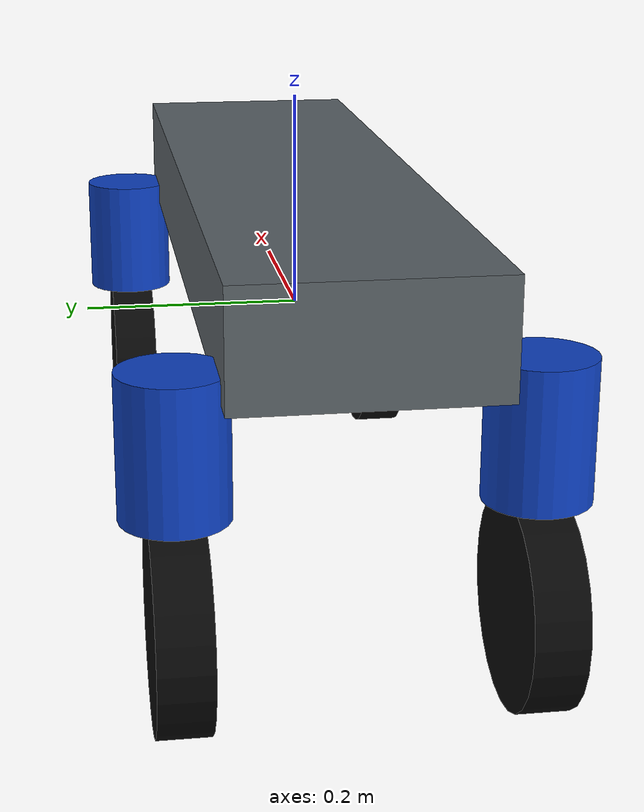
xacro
<?xml version="1.0"?>
<robot name="mars_rover_demo" xmlns:xacro="http://www.ros.org/wiki/xacro">
  <xacro:property name="wheelbase" value="0.706"/>
  <xacro:property name="track_width" value="0.288"/>
  <xacro:property name="base_length" value="0.82"/>
  <xacro:property name="base_width" value="0.22"/>
  <xacro:property name="base_height" value="0.10"/>
  <xacro:property name="steering_height" value="0.12"/>
  <xacro:property name="wheel_radius" value="0.09"/>
  <xacro:property name="wheel_width" value="0.045"/>

  <material name="base_gray">
    <color rgba="0.35 0.38 0.40 1.0"/>
  </material>
  <material name="steering_blue">
    <color rgba="0.05 0.25 0.75 1.0"/>
  </material>
  <material name="wheel_black">
    <color rgba="0.03 0.03 0.03 1.0"/>
  </material>

  <link name="base_link">
    <visual>
      <origin xyz="0 0 0.08" rpy="0 0 0"/>
      <geometry>
        <box size="${base_length} ${base_width} ${base_height}"/>
      </geometry>
      <material name="base_gray"/>
    </visual>
  </link>

  <xacro:macro name="wheel_module" params="prefix x y">
    <link name="${prefix}_steering_link">
      <visual>
        <origin xyz="0 0 -0.03" rpy="0 0 0"/>
        <geometry>
          <cylinder radius="0.045" length="${steering_height}"/>
        </geometry>
        <material name="steering_blue"/>
      </visual>
    </link>

    <joint name="${prefix}_steering_joint" type="continuous">
      <parent link="base_link"/>
      <child link="${prefix}_steering_link"/>
      <origin xyz="${x} ${y} 0.02" rpy="0 0 0"/>
      <axis xyz="0 0 1"/>
    </joint>

    <link name="${prefix}_wheel_link">
      <visual>
        <origin xyz="0 0 -0.10" rpy="1.5708 0 0"/>
        <geometry>
          <cylinder radius="${wheel_radius}" length="${wheel_width}"/>
        </geometry>
        <material name="wheel_black"/>
      </visual>
    </link>

    <joint name="${prefix}_drive_joint" type="continuous">
      <parent link="${prefix}_steering_link"/>
      <child link="${prefix}_wheel_link"/>
      <origin xyz="0 0 -0.08" rpy="0 0 0"/>
      <axis xyz="0 1 0"/>
    </joint>
  </xacro:macro>

  <xacro:wheel_module prefix="front_left" x="${wheelbase / 2.0}" y="${track_width / 2.0}"/>
  <xacro:wheel_module prefix="front_right" x="${wheelbase / 2.0}" y="${-track_width / 2.0}"/>
  <xacro:wheel_module prefix="rear_left" x="${-wheelbase / 2.0}" y="${track_width / 2.0}"/>
  <xacro:wheel_module prefix="rear_right" x="${-wheelbase / 2.0}" y="${-track_width / 2.0}"/>
</robot>
